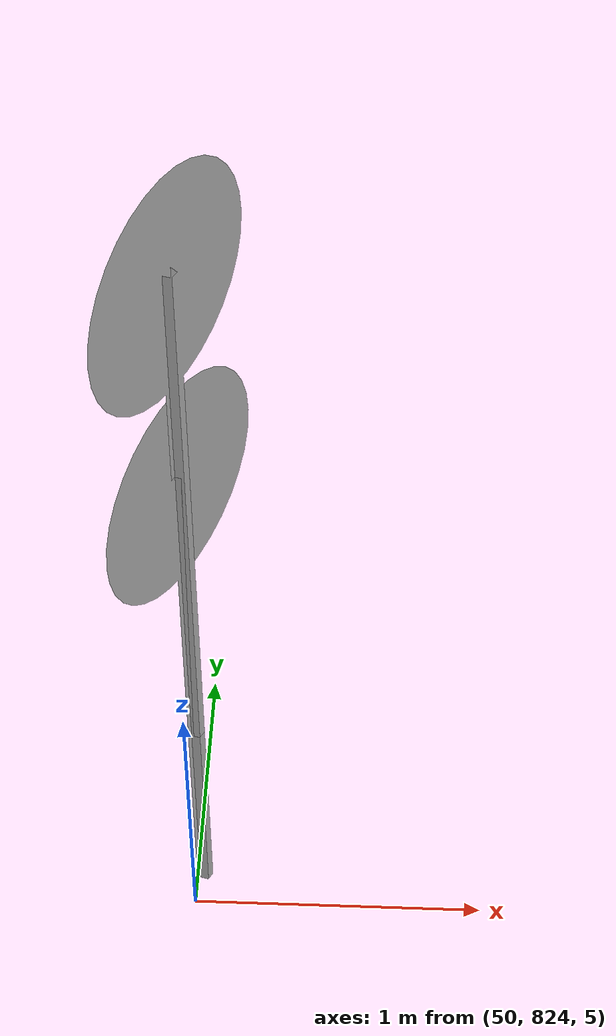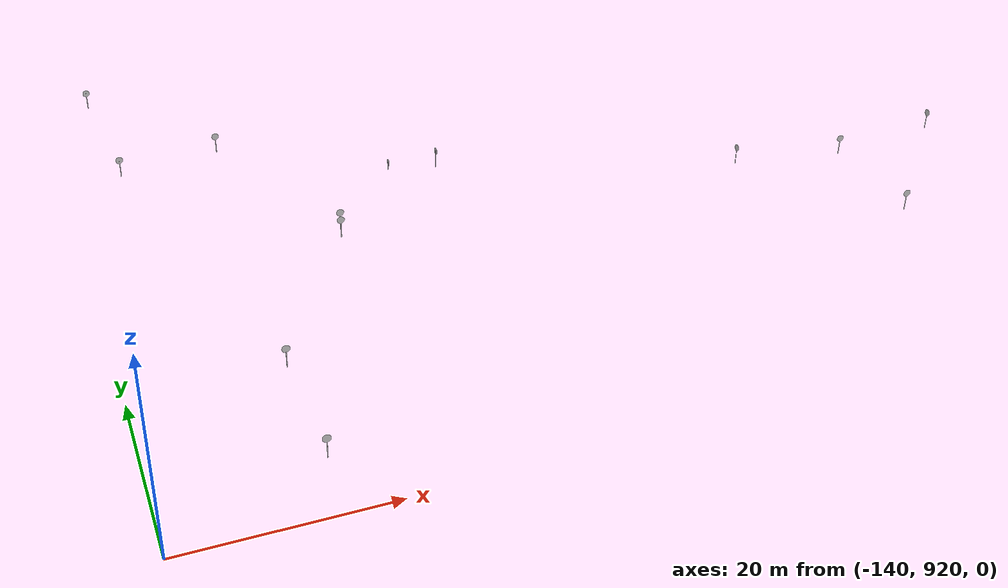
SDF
<sdf version="1.8">
 <world name="custom_city">
  <scene><ambient>1.0 1.0 1.0</ambient><background>0.8 0.8 0.8</background></scene>
  <plugin filename="ignition-gazebo-physics-system" name="ignition::gazebo::systems::Physics"/>
  <plugin filename="ignition-gazebo-sensors-system" name="ignition::gazebo::systems::Sensors">
   <render_engine>ogre2</render_engine>
  </plugin>
  <plugin filename="ignition-gazebo-user-commands-system" name="ignition::gazebo::systems::UserCommands"/>
  <plugin filename="ignition-gazebo-scene-broadcaster-system" name="ignition::gazebo::systems::SceneBroadcaster"/>
  <include>
   <uri>model://models/Signs/Priority_sign</uri>
   <name>Priority Sign</name>
   <pose>-134.9530029296875 973.00592041015625 5 0 0 0</pose>
  </include>
  <include>
   <uri>model://models/Signs/Speed_limit_sign_50</uri>
   <name>Speed limit 50</name>
   <pose>-126.07900238037109 921.565185546875 5 0 0 0</pose>
  </include>
  <include>
   <uri>model://models/Signs/Speed_limit_sign_30</uri>
   <name>Speed limit 30</name>
   <pose>-136.27400207519531 990.6632080078125 5 0 0 0</pose>
  </include>
  <include>
   <uri>model://models/Signs/Pedestrian_Crossing_sign</uri>
   <name>Pedestrian Crossing</name>
   <pose>-126.265 934.13599999999997 5 0 0 0</pose>
  </include>
  <include>
   <uri>model://models/Signs/Give_way_sign</uri>
   <name>Give way</name>
   <pose>-115.89192199707031 953.05523681640625 5 0 0 3.1399999999975172</pose>
  </include>
  <include>
   <uri>model://models/Signs/Ahead_only_sign</uri>
   <name>Ahead_only</name>
   <pose>-21.958778381347656 953.3294677734375 5 0 0 1.5700000042340219</pose>
  </include>
  <include>
   <uri>model://models/Signs/Turn_Right_sign</uri>
   <name>Turn Right</name>
   <pose>-115.89810943603516 953.17010498046875 5.7992801666259766 0 0 3.1399999999975172</pose>
  </include>
  <include>
   <uri>model://models/Signs/Turn_Left_sign</uri>
   <name>Turn Left</name>
   <pose>-14.958754539489746 1117.484130859375 5 0 0 3.1399999999975172</pose>
  </include>
  <include>
   <uri>model://models/Signs/Speed_limit_sign_70</uri>
   <name>Speed limit 70</name>
   <pose>-135.56199645996094 1076.6138916015625 5 0 0 0</pose>
  </include>
  <include>
   <uri>model://models/Signs/Ahead_only_sign</uri>
   <name>Ahead_only_0</name>
   <pose>-107.56069946289062 963.59075927734375 4.5 0 0 -1.5700000042340219</pose>
  </include>
  <include>
   <uri>model://models/Signs/Speed_limit_sign_30</uri>
   <name>Speed limit 30_0</name>
   <pose>-101.80255889892578 964.47357177734375 4.3869600296020508 0 0 -1.4986599274514822</pose>
  </include>
  <include>
   <uri>model://models/Signs/Speed_limit_sign_30</uri>
   <name>Speed limit 30_1</name>
   <pose>-58.477100372314453 939.40399169921875 4.2476701736450195 0 0 3.0885321227207432</pose>
  </include>
  <include>
   <uri>model://models/Signs/Speed_limit_sign_30</uri>
   <name>Speed limit 30_2</name>
   <pose>-126.91799926757812 714.0999755859375 4.0898399353027344 0 0 0</pose>
  </include>
  <include>
   <uri>model://models/Signs/Speed_limit_sign_30</uri>
   <name>Speed limit 30_3</name>
   <pose>-107.72100067138672 704.8060302734375 4.3104000091552734 0 0 -1.6041868653478144</pose>
  </include>
  <include>
   <uri>model://models/Signs/Speed_limit_sign_30</uri>
   <name>Speed limit 30_4</name>
   <pose>-68.876502990722656 720.794189453125 4.3820400238037109 0 0 0</pose>
  </include>
  <include>
   <uri>model://models/Signs/Speed_limit_sign_30</uri>
   <name>Speed limit 30_5</name>
   <pose>-77.933097839355469 692.43798828125 4.5 0 0 1.5038014977585488</pose>
  </include>
  <include>
   <uri>model://models/Signs/Speed_limit_sign_50</uri>
   <name>Speed limit 50_0</name>
   <pose>-75.254684448242188 703.92010498046875 4.5 0 0 -1.6202100202990899</pose>
  </include>
  <include>
   <uri>model://models/Signs/Speed_limit_sign_50</uri>
   <name>Speed limit 50_1</name>
   <pose>-111.59300231933594 693.3079833984375 4.5 0 0 1.2679632761766444</pose>
  </include>
  <include>
   <uri>model://models/Signs/Speed_limit_sign_50</uri>
   <name>Speed limit 50_2</name>
   <pose>-58.43 710.16 4.5 0 0 3.09</pose>
  </include>
  <include>
   <uri>model://models/Signs/Give_way_sign</uri>
   <name>Give_way_sign2</name>
   <pose>-58.43 951.77 4.5 0 0 3.09</pose>
  </include>
  <include>
   <uri>model://models/Signs/Priority_sign</uri>
   <name>Priority_sign2</name>
   <pose>-70.43 953.77 4.5 0 0 1.57</pose>
  </include>
  <include>
   <uri>model://models/Signs/Priority_sign</uri>
   <name>Priority_sign3</name>
   <pose>55 950.77 4.5 0 0 1.57</pose>
  </include>
  <include>
   <uri>model://models/Signs/Speed_limit_sign_50</uri>
   <name>Speed limit 50_3</name>
   <pose>-45.43 953.77 4.5 0 0 1.57</pose>
  </include>
  <include>
   <uri>model://models/Signs/Speed_limit_sign_70</uri>
   <name>Speed limit 70_3</name>
   <pose>61 933.77 4.5 0 0 0.1</pose>
  </include>
  <include>
   <uri>model://models/Signs/Pedestrian_Crossing_sign</uri>
   <name>Pedestrian Crossing2</name>
   <pose>50 824.13599999999997 5 0 0 1.07</pose>
  </include>
  <include>
   <uri>model://models/Signs/Speed_limit_sign_30</uri>
   <name>Speed limit 30_6</name>
   <pose>50 824.13599999999997 5.8 0 0 1.07</pose>
  </include>
  <include>
   <uri>model://models/Signs/Speed_limit_sign_70</uri>
   <name>Speed limit 70_4</name>
   <pose>113 802.77 4.5 0 0 1.47</pose>
  </include>
  <include>
   <uri>model://models/Signs/Turn_Right_sign</uri>
   <name>Turn Right2</name>
   <pose>-45.89810943603516 1117.17010498046875 5.01666259766 0 0 1.57</pose>
  </include>
  <include>
   <uri>model://models/Signs/Turn_Right_sign</uri>
   <name>Turn Right3</name>
   <pose>-18.89810943603516 971.17010498046875 5.01666259766 0 0 0</pose>
  </include>
  <include>
   <uri>model://models/Signs/Give_way_sign</uri>
   <name>Give_way_sign3</name>
   <pose>12 1017.77 4.5 0 0 2.25</pose>
  </include>
  <include>
   <uri>model://models/Signs/Give_way_sign</uri>
   <name>Give_way_sign4</name>
   <pose>70 950 4.5 0 0 3.14</pose>
  </include>
  <include>
   <uri>model://models/Signs/Speed_limit_sign_30</uri>
   <name>Speed limit 30_7</name>
   <pose>70.89810943603516 986.17010498046875 5.01666259766 0 0 1.17</pose>
  </include>
  <include>
   <uri>model://models/Signs/Speed_limit_sign_70</uri>
   <name>Speed limit 70_5</name>
   <pose>-124 975.77 4.5 0 0 3.14</pose>
  </include>
  <include>
   <uri>model://models/Signs/Speed_limit_sign_30</uri>
   <name>Speed limit 30_8</name>
   <pose>-124 1103.77 4.5 0 0 3.14</pose>
  </include>
 </world>
</sdf>

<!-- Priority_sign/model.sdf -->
<sdf version="1.5">
  <model name="Priority Sign">
    <static>true</static>
    <link name="link">
      <collision name="collision">
        <geometry>
          <mesh>
            <scale>10 10 10</scale>
            <uri>model://models/Signs/Priority_sign/meshes/priority_sign.dae</uri>
          </mesh>
        </geometry>
      </collision>
      <visual name="visual">
        <geometry>
          <mesh>
            <scale>10 10 10</scale>
            <uri>model://models/Signs/Priority_sign/meshes/priority_sign.dae</uri>
          </mesh>
        </geometry>
      </visual>
    </link>
  </model>
</sdf>

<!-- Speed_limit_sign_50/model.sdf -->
<sdf version="1.5">
  <model name="Speed limit 50">
    <static>true</static>
    <link name="link">
      <collision name="collision">
        <geometry>
          <mesh>
            <scale>10 10 10</scale>
            <uri>model://models/Signs/Speed_limit_sign_50/meshes/speed_limit_sign.dae</uri>
          </mesh>
        </geometry>
      </collision>
      <visual name="visual">
        <geometry>
          <mesh>
            <scale>10 10 10</scale>
            <uri>model://models/Signs/Speed_limit_sign_50/meshes/speed_limit_sign.dae</uri>
          </mesh>
        </geometry>
      </visual>
    </link>
  </model>
</sdf>

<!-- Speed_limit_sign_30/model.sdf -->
<sdf version="1.5">
  <model name="Speed limit 30">
    <static>true</static>
    <link name="link">
      <collision name="collision">
        <geometry>
          <mesh>
            <scale>10 10 10</scale>
            <uri>model://models/Signs/Speed_limit_sign_30/meshes/speed_limit_sign.dae</uri>
          </mesh>
        </geometry>
      </collision>
      <visual name="visual">
        <geometry>
          <mesh>
            <scale>10 10 10</scale>
            <uri>model://models/Signs/Speed_limit_sign_30/meshes/speed_limit_sign.dae</uri>
          </mesh>
        </geometry>
      </visual>
    </link>
  </model>
</sdf>

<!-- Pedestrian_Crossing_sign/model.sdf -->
<sdf version="1.5">
  <model name="Pedestrian Crossing">
    <static>true</static>
    <link name="link">
      <collision name="collision">
        <geometry>
          <mesh>
            <scale>10 10 10</scale>
            <uri>model://models/Signs/Pedestrian_Crossing_sign/meshes/pedestrian_crossing_sign.dae</uri>
          </mesh>
        </geometry>
      </collision>
      <visual name="visual">
        <geometry>
          <mesh>
            <scale>10 10 10</scale>
            <uri>model://models/Signs/Pedestrian_Crossing_sign/meshes/pedestrian_crossing_sign.dae</uri>
          </mesh>
        </geometry>
      </visual>
    </link>
  </model>
</sdf>

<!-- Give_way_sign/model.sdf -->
<sdf version="1.5">
  <model name="Give way">
    <static>true</static>
    <link name="link">
      <collision name="collision">
        <geometry>
          <mesh>
            <scale>10 10 10</scale>
            <uri>model://models/Signs/Give_way_sign/meshes/give_way_sign.dae</uri>
          </mesh>
        </geometry>
      </collision>
      <visual name="visual">
        <geometry>
          <mesh>
            <scale>10 10 10</scale>
            <uri>model://models/Signs/Give_way_sign/meshes/give_way_sign.dae</uri>
          </mesh>
        </geometry>
      </visual>
    </link>
  </model>
</sdf>

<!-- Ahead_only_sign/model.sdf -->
<sdf version="1.5">
  <model name="Ahead_only">
    <static>true</static>
    <link name="link">
      <collision name="collision">
        <geometry>
          <mesh>
            <scale>10 10 10</scale>
            <uri>model://models/Signs/Ahead_only_sign/meshes/ahead_only_sign.dae</uri>
          </mesh>
        </geometry>
      </collision>
      <visual name="visual">
        <geometry>
          <mesh>
            <scale>10 10 10</scale>
            <uri>model://models/Signs/Ahead_only_sign/meshes/ahead_only_sign.dae</uri>
          </mesh>
        </geometry>
      </visual>
    </link>
  </model>
</sdf>

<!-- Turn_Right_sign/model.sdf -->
<sdf version="1.5">
  <model name="Turn Right">
    <static>true</static>
    <link name="link">
      <collision name="collision">
        <geometry>
          <mesh>
            <scale>10 10 10</scale>
            <uri>model://models/Signs/Turn_Right_sign/meshes/turn_right_sign.dae</uri>
          </mesh>
        </geometry>
      </collision>
      <visual name="visual">
        <geometry>
          <mesh>
            <scale>10 10 10</scale>
            <uri>model://models/Signs/Turn_Right_sign/meshes/turn_right_sign.dae</uri>
          </mesh>
        </geometry>
      </visual>
    </link>
  </model>
</sdf>

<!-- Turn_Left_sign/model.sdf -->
<sdf version="1.5">
  <model name="Turn Left">
    <static>true</static>
    <link name="link">
      <collision name="collision">
        <geometry>
          <mesh>
            <scale>10 10 10</scale>
            <uri>model://models/Signs/Turn_Left_sign/meshes/turn_left_sign.dae</uri>
          </mesh>
        </geometry>
      </collision>
      <visual name="visual">
        <geometry>
          <mesh>
            <scale>10 10 10</scale>
            <uri>model://models/Signs/Turn_Left_sign/meshes/turn_left_sign.dae</uri>
          </mesh>
        </geometry>
      </visual>
    </link>
  </model>
</sdf>

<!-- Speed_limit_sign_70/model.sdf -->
<sdf version="1.5">
  <model name="Speed limit 70">
    <static>true</static>
    <link name="link">
      <collision name="collision">
        <geometry>
          <mesh>
            <scale>10 10 10</scale>
            <uri>model://models/Signs/Speed_limit_sign_70/meshes/speed_limit_sign.dae</uri>
          </mesh>
        </geometry>
      </collision>
      <visual name="visual">
        <geometry>
          <mesh>
            <scale>10 10 10</scale>
            <uri>model://models/Signs/Speed_limit_sign_70/meshes/speed_limit_sign.dae</uri>
          </mesh>
        </geometry>
      </visual>
    </link>
  </model>
</sdf>
